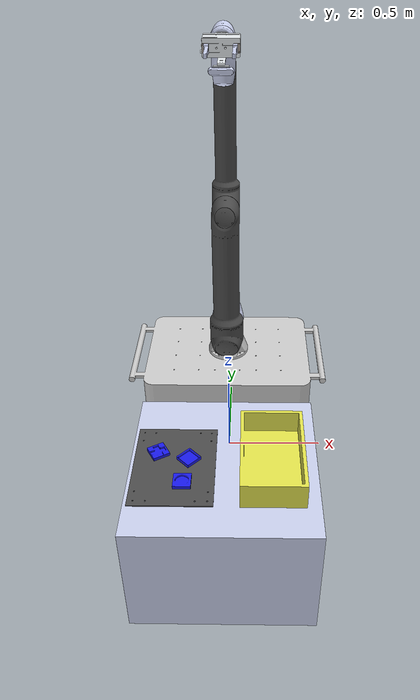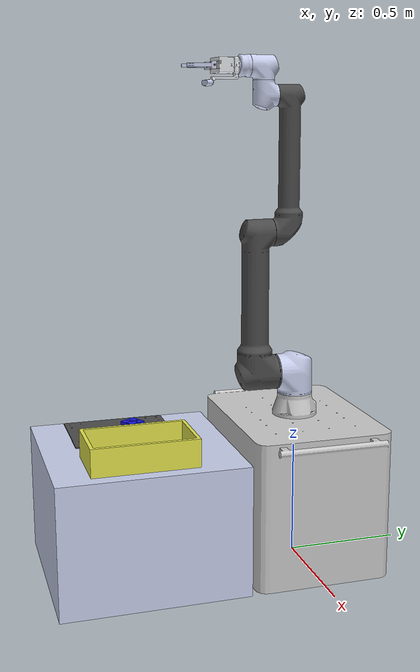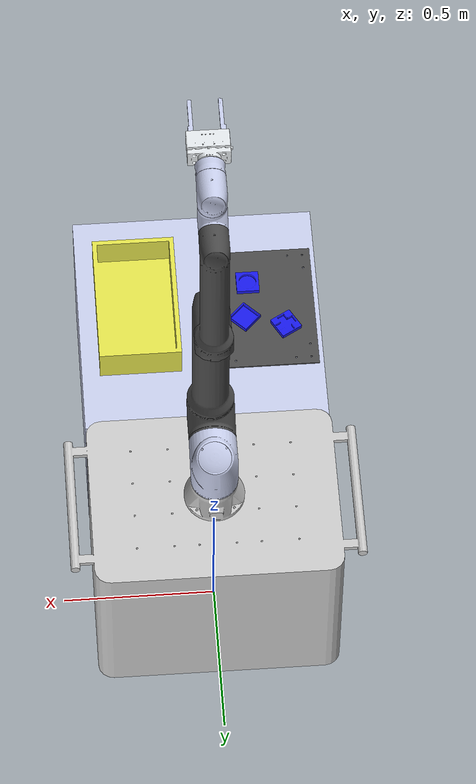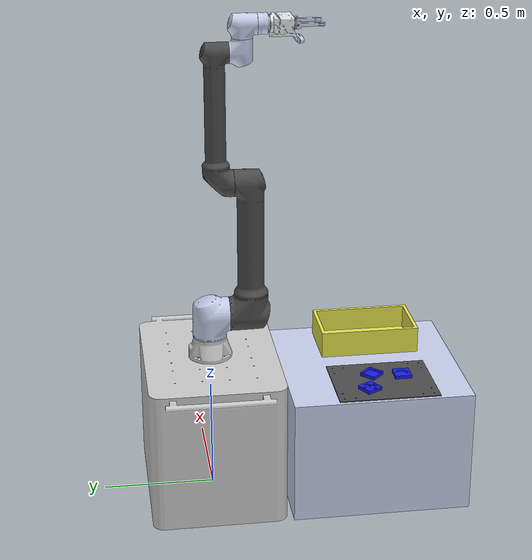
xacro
<?xml version="1.0"?>

<robot
    xmlns:xacro="http://www.ros.org/wiki/xacro"
    xmlns:controller="http://playerstage.sourceforge.net/gazebo/xmlschema/#controller"
    xmlns:interface="http://playerstage.sourceforge.net/gazebo/xmlschema/#interface"
    xmlns:sensor="http://playerstage.sourceforge.net/gazebo/xmlschema/#sensor"
    name="keti_robot_arm">

    <xacro:include filename="keti_robot.xacro"/>
    <xacro:include filename="keti_gripper.xacro"/>
    <xacro:include filename="keti_camera.xacro"/>
    <xacro:include filename="keti_environment.xacro"/>
    <xacro:include filename="keti_controller.xacro"/>

</robot>

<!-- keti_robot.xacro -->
<robot
    xmlns:xacro="http://www.ros.org/wiki/xacro">

    <xacro:property name="base_offset" value="0.6499999761581421"/>

    <link name="world"></link>

    <joint name="base_joint" type="fixed">
        <origin xyz="0 0 ${base_offset}" rpy="0 0 0"/>
        <parent link="world" />
        <child link="base_link" />
    </joint>

    <link name="base_link">
        <inertial>
            <origin
                xyz="-3.36084696400674E-05 0.00028713387556778 0.0438378186374772"
                rpy="0.0 0.0 0.0" />
            <mass value="2.25213983841171" />
            <inertia
                ixx="0.00610179267270193"
                ixy="5.05489700638155E-06"
                ixz="-2.06579420136556E-06"
                iyy="0.00603383828429949"
                iyz="-2.85750001496908E-06"
                izz="0.00860649294977137" />
        </inertial>
        <visual name="">
            <origin xyz="0.0 0.0 0.0" rpy="0.0 0.0 0.0" />
            <geometry>
                <mesh filename="package://keti_robot_description/meshes/base_link.STL" />
            </geometry>
            <material name="">
                <color rgba="0.8 0.8 0.8 1" />
            </material>
        </visual>
        <collision>
            <origin xyz="0.0 0.0 0.0" rpy="0.0 0.0 0.0" />
            <geometry>
                <mesh filename="package://keti_robot_description/meshes/base_link.STL" />
            </geometry>
        </collision>
    </link>

    <link name="link1">
        <inertial>
            <origin
                xyz="-0.000155596593394897 -0.0115300991030924 0.185903011387218"
                rpy="0.0 0.0 0.0">
            </origin>
            <mass value="3.38716123949166" />
            <inertia
                ixx="0.00965712344078406"
                ixy="2.56321142215039E-06"
                ixz="-2.07213259316219E-06"
                iyy="0.00999757711288239"
                iyz="0.00227412846191921"
                izz="0.00985394828837277" />
        </inertial>
        <visual name="">
            <origin xyz="0.0 0.0 0.0" rpy="0.0 0.0 0.0" />
            <geometry>
                <mesh filename="package://keti_robot_description/meshes/link1.STL" />
            </geometry>
            <material name="">
                <color rgba="0.792156862745098 0.819607843137255 0.933333333333333 1" />
            </material>
        </visual>
        <collision>
            <origin xyz="0.0 0.0 0.0" rpy="0.0 0.0 0.0" />
            <geometry>
                <mesh filename="package://keti_robot_description/meshes/link1.STL" />
            </geometry>
        </collision>
    </link>

    <link name="link2">
        <inertial>
            <origin
                xyz="-5.04047652291201E-05 -0.255908501214572 -0.182094524542086"
                rpy="0.0 0.0 0.0" />
            <mass value="10.3635885023069" />
            <inertia
                ixx="0.120627099316039"
                ixy="2.65066669408744E-06"
                ixz="2.16897828737298E-06"
                iyy="0.0227437773556374"
                iyz="-0.0016029791309899"
                izz="0.120841683724806" />
        </inertial>
        <visual name="">
            <origin xyz="0.0 0.0 0.0" rpy="0.0 0.0 0.0" />
            <geometry>
                <mesh filename="package://keti_robot_description/meshes/link2.STL" />
            </geometry>
            <material name="">
                <color rgba="0.294117647058824 0.294117647058824 0.294117647058824 1" />
            </material>
        </visual>
        <collision>
            <origin xyz="0.0 0.0 0.0" rpy="0.0 0.0 0.0" />
            <geometry>
                <mesh filename="package://keti_robot_description/meshes/link2.STL" />
            </geometry>
        </collision>
    </link>

    <link name="link3">
        <inertial>
            <origin
                xyz="0.266215180264014 1.29712622268241E-07 0.143135404945513"
                rpy="0.0 0.0 0.0" />
            <mass value="5.05083741641896" />
            <inertia
                ixx="0.00628902623789062"
                ixy="9.1337717733775E-09"
                ixz="-0.000370519945348952"
                iyy="0.061756757690725"
                iyz="-1.56347717729795E-09"
                izz="0.0618362170084191" />
        </inertial>
        <visual name="">
            <origin xyz="0.0 0.0 0.0" rpy="0.0 0.0 0.0" />
            <geometry>
                <mesh filename="package://keti_robot_description/meshes/link3.STL" />
            </geometry>
            <material name="">
                <color rgba="0.294117647058824 0.294117647058824 0.294117647058824 1" />
            </material>
        </visual>
        <collision>
            <origin xyz="0.0 0.0 0.0" rpy="0.0 0.0 0.0" />
            <geometry>
                <mesh filename="package://keti_robot_description/meshes/link3.STL" />
            </geometry>
        </collision>
    </link>

    <link name="link4">
        <inertial>
            <origin
                xyz="0.00564731690989118 -2.03600273793181E-07 -0.111294177443476"
                rpy="0.0 0.0 0.0" />
            <mass value="0.809634247265308" />
            <inertia
                ixx="0.000806283674225212"
                ixy="-1.71998154303632E-08"
                ixz="0.000215199499704635"
                iyy="0.000838076862135837"
                iyz="-7.62439682589746E-09"
                izz="0.00088136714943862" />
        </inertial>
        <visual name="">
            <origin xyz="0.0 0.0 0.0" rpy="0.0 0.0 0.0" />
            <geometry>
                <mesh filename="package://keti_robot_description/meshes/link4.STL" />
            </geometry>
            <material name="">
                <color rgba="0.792156862745098 0.819607843137255 0.933333333333333 1" />
                <texture filename="" />
            </material>
        </visual>
        <collision>
            <origin xyz="0.0 0.0 0.0" rpy="0.0 0.0 0.0" />
            <geometry>
                <mesh filename="package://keti_robot_description/meshes/link4.STL" />
            </geometry>
        </collision>
    </link>

    <link name="link5">
        <inertial>
            <origin
                xyz="3.79221289037446E-07 -0.0065154111458714 0.111384778201544"
                rpy="0.0 0.0 0.0" />
            <mass value="0.822358399005338" />
            <inertia
                ixx="0.00086697648332544"
                ixy="-4.3209208438896E-09"
                ixz="-3.43499554605311E-09"
                iyy="0.00082200885145279"
                iyz="0.000222523008866456"
                izz="0.000907682647219081" />
        </inertial>
        <visual name="">
            <origin xyz="0.0 0.0 0.0" rpy="0.0 0.0 0.0" />
            <geometry>
                <mesh filename="package://keti_robot_description/meshes/link5.STL" />
            </geometry>
            <material name="">
                <color rgba="0.792156862745098 0.819607843137255 0.933333333333333 1" />
                <texture filename="" />
            </material>
        </visual>
        <collision>
            <origin xyz="0.0 0.0 0.0" rpy="0.0 0.0 0.0" />
            <geometry>
                <mesh filename="package://keti_robot_description/meshes/link5.STL" />
            </geometry>
        </collision>
    </link>

    <link name="link6">
        <inertial>
            <origin
                xyz="-2.74288486201701E-07 -0.000235269428608742 -0.0906803365828259"
                rpy="0.0 0.0 0.0" />
            <mass value="0.237678022472349" />
            <inertia
                ixx="0.000145950216129124"
                ixy="-1.23036106344042E-09"
                ixz="-7.04161447052051E-10"
                iyy="0.000148314461323765"
                iyz="5.7765854614293E-07"
                izz="0.000234953691644831" />
        </inertial>
        <visual name="">
            <origin xyz="0.0 0.0 0.0" rpy="0.0 0.0 0.0" />
            <geometry>
                <mesh filename="package://keti_robot_description/meshes/link6.STL" />
            </geometry>
            <material name="">
                <color rgba="0.792156862745098 0.819607843137255 0.933333333333333 1" />
            </material>
        </visual>
        <collision>
            <origin xyz="0.0 0.0 0.0" rpy="0.0 0.0 0.0" />
            <geometry>
                <mesh filename="package://keti_robot_description/meshes/link6.STL" />
            </geometry>
        </collision>
    </link>

    <joint name="q1" type="revolute">
        <origin xyz="0.0 0.0 0.0" rpy="0.0 0.0 0.0" />
        <parent link="base_link" />
        <child link="link1" />
        <axis xyz="0.0 0.0 1.0" />
        <limit lower="-6.3" upper="6.3" effort="10" velocity="100" />
        <dynamics damping="50" friction="1"/>
    </joint>

    <joint name="q2" type="revolute">
        <origin xyz="0.0 0.0 0.198" rpy="-1.5708 0.0 0.0" />
        <parent link="link1" />
        <child link="link2" />
        <axis xyz="0.0 0.0 1.0" />
        <limit lower="-6.3" upper="6.3" effort="10" velocity="100" />
        <dynamics damping="50" friction="1"/>
    </joint>

    <joint name="q3" type="revolute">
        <origin xyz="0.0 -0.6127 -0.1875" rpy="0.0 0.0 -1.5708" />
        <parent link="link2" />
        <child link="link3" />
        <axis xyz="0.0 0.0 1.0" />
        <limit lower="-6.3" upper="6.3" effort="10" velocity="100" />
        <dynamics damping="50" friction="1"/>
    </joint>

    <joint name="q4" type="revolute">
        <origin xyz="0.57015 0 0.1484" rpy="0.0 0.0 0.0" />
        <parent link="link3" />
        <child link="link4" />
        <axis xyz="0.0 0.0 1.0" />
        <limit lower="-6.3" upper="6.3" effort="10" velocity="100" />
        <dynamics damping="50" friction="1"/>
    </joint>

    <joint name="q5" type="revolute">
        <origin xyz="0 0 -0.11715" rpy="1.5708 0 1.5708" />
        <parent link="link4" />
        <child link="link5" />
        <axis xyz="0.0 0.0 1.0" />
        <limit lower="-6.3" upper="6.3" effort="10" velocity="100" />
        <dynamics damping="50" friction="1"/>
    </joint>

    <joint name="q6" type="revolute">
        <origin xyz="0 0 0.11715" rpy="-1.5708 0 0" />
        <parent link="link5" />
        <child link="link6" />
        <axis xyz="0.0 0.0 1.0" />
        <limit lower="-6.3" upper="6.3" effort="10" velocity="100" />
        <dynamics damping="50" friction="1"/>
    </joint>

</robot>

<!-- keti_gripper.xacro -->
<robot
    xmlns:xacro="http://www.ros.org/wiki/xacro">

    <link name="gripper_body">
        <inertial>
            <origin
                xyz="-3.45920909952668E-05 -0.0477817173459312 -0.00571131983067263"
                rpy="0.0 0.0 0.0" />
            <mass value="0.933264814357233" />
            <inertia
                ixx="0.000450791407921585"
                ixy="4.50924518749628E-07"
                ixz="-7.44739815604934E-07"
                iyy="0.00142129108945366"
                iyz="-3.93915847422977E-06"
                izz="0.00128066984792434" />
        </inertial>
        <visual name="">
            <origin xyz="0.0 0.0 0.0" rpy="0.0 0.0 0.0" />
            <geometry>
                <mesh filename="package://keti_robot_description/meshes/gripper_body.STL" />
            </geometry>
            <material name="">
                <color rgba="0.898039215686275 0.917647058823529 0.929411764705882 1" />
            </material>
        </visual>
        <collision>
            <origin xyz="0.0 0.0 0.0" rpy="0.0 0.0 0.0" />
            <geometry>
                <mesh filename="package://keti_robot_description/meshes/gripper_body.STL" />
            </geometry>
        </collision>
    </link>

    <link name="gripper_tool1">
        <inertial>
            <origin
                xyz="-0.0503901981194649 -0.00839540838169439 -0.000187095087317068"
                rpy="0.0 0.0 0.0" />
            <mass value="0.0524980209707729" />
            <inertia
                ixx="4.96961994940061E-06"
                ixy="9.16328438600949E-07"
                ixz="-9.29191075202697E-08"
                iyy="5.26806301784339E-06"
                iyz="3.76648518766332E-08"
                izz="4.33143562379133E-06" />
        </inertial>
        <visual name="">
            <origin xyz="0.0 0.0 0.0" rpy="0.0 0.0 0.0" />
            <geometry>
                <mesh filename="package://keti_robot_description/meshes/gripper_tool1.STL" />
            </geometry>
            <material name="">
                <color rgba="0.650980392156863 0.619607843137255 0.588235294117647 1" />
            </material>
        </visual>
        <collision>
            <origin xyz="0.0 0.0 0.0" rpy="0.0 0.0 0.0" />
            <geometry>
                <mesh filename="package://keti_robot_description/meshes/gripper_tool1.STL" />
            </geometry>
        </collision>
    </link>

    <link name="gripper_finger1">
        <inertial>
            <origin
                xyz="-0.047830477436016 -0.0616732966021152 -4.02028360380058E-07"
                rpy="0.0 0.0 0.0" />
            <mass value="0.0233180451311379" />
            <inertia
                ixx="2.40087905135542E-05"
                ixy="3.97733646582783E-07"
                ixz="-1.76194958848478E-12"
                iyy="1.26145385442102E-06"
                iyz="-3.65200575464404E-11"
                izz="2.34253553003692E-05" />
        </inertial>
        <visual name="">
            <origin xyz="0.0 0.0 0.0" rpy="0.0 0.0 0.0" />
            <geometry>
                <mesh filename="package://keti_robot_description/meshes/gripper_finger1.STL" />
            </geometry>
            <material name="">
                <color rgba="0.792156862745098 0.819607843137255 0.933333333333333 1" />
            </material>
        </visual>
        <collision>
            <origin xyz="0.0 0.0 0.0" rpy="0.0 0.0 0.0" />
            <geometry>
                <mesh filename="package://keti_robot_description/meshes/gripper_finger1.STL" />
            </geometry>
        </collision>
    </link>

    <link name="gripper_tool2">
        <inertial>
            <origin
                xyz="0.050390198119466 -0.00839540838169439 0.000187095087317957"
                rpy="0.0 0.0 0.0" />
            <mass value="0.052498020970773" />
            <inertia
                ixx="4.96961994940061E-06"
                ixy="-9.1632843860095E-07"
                ixz="-9.29191075202696E-08"
                iyy="5.2680630178434E-06"
                iyz="-3.76648518766344E-08"
                izz="4.33143562379133E-06" />
        </inertial>
        <visual name="">
            <origin xyz="0.0 0.0 0.0" rpy="0.0 0.0 0.0" />
            <geometry>
                <mesh filename="package://keti_robot_description/meshes/gripper_tool2.STL" />
            </geometry>
            <material name="">
                <color rgba="0.650980392156863 0.619607843137255 0.588235294117647 1" />
            </material>
        </visual>
        <collision>
            <origin xyz="0.0 0.0 0.0" rpy="0.0 0.0 0.0" />
            <geometry>
                <mesh filename="package://keti_robot_description/meshes/gripper_tool2.STL" />
            </geometry>
        </collision>
    </link>

    <link name="gripper_finger2">
        <inertial>
            <origin
                xyz="0.0478304774360172 -0.0616732966021147 4.02028361046192E-07"
                rpy="0.0 0.0 0.0" />
            <mass value="0.0233180451311379" />
            <inertia
                ixx="2.40087905135545E-05"
                ixy="-3.97733646582811E-07"
                ixz="-1.7619495854565E-12"
                iyy="1.26145385442102E-06"
                iyz="3.6520057602396E-11"
                izz="2.34253553003694E-05" />
        </inertial>
        <visual name="">
            <origin xyz="0.0 0.0 0.0" rpy="0.0 0.0 0.0" />
            <geometry>
                <mesh filename="package://keti_robot_description/meshes/gripper_finger2.STL" />
            </geometry>
            <material name="">
                <color rgba="0.792156862745098 0.819607843137255 0.933333333333333 1" />
            </material>
        </visual>
        <collision>
            <origin xyz="0.0 0.0 0.0" rpy="0.0 0.0 0.0" />
            <geometry>
                <mesh filename="package://keti_robot_description/meshes/gripper_finger2.STL" />
            </geometry>
        </collision>
    </link>

    <link name="cam_body">
        <inertial>
            <origin
                xyz="0.0014399625101349 -5.94806382812063E-05 -0.0144824351521329"
                rpy="0 0 0" />
            <mass value="0.0224324424296924" />
            <inertia
                ixx="1.5561270767764E-06"
                ixy="-1.37007630764484E-09"
                ixz="1.48641223628634E-07"
                iyy="1.39866481202687E-05"
                iyz="-2.3852444733374E-09"
                izz="1.4977644157627E-05" />
        </inertial>
        <visual name="">
            <origin xyz="0 0 0" rpy="0 0 0" />
            <geometry>
                <mesh filename="package://keti_robot_description/meshes/cam.STL" />
            </geometry>
            <material name="">
                <color rgba="0.792156862745098 0.819607843137255 0.933333333333333 1" />
            </material>
        </visual>
        <collision>
            <origin xyz="0 0 0" rpy="0 0 0" />
            <geometry>
                <mesh filename="package://keti_robot_description/meshes/cam.STL" />
            </geometry>
        </collision>
    </link>

    <joint name="link6_gripper_fixed" type="fixed">
        <origin xyz="0.0 0.0 -0.1148" rpy="1.5708 0.0 0.0" />
        <parent link="link6" />
        <child link="gripper_body" />
    </joint>

    <joint name="s1" type="prismatic">
        <origin xyz="0.0 -0.0962 0.0" rpy="0.0 0.0 0.0" />
        <parent link="gripper_body" />
        <child link="gripper_tool1" />
        <axis xyz="1.0 0.0 0.0" />
        <limit lower="0.0" upper="0.04" effort="10" velocity="100" />
        <dynamics damping="50" friction="1"/>
    </joint>

    <joint name="tool_finger1_fixed" type="fixed">
        <origin xyz="0.0 0.0 0.0" rpy="0.0 0.0 0.0" />
        <parent link="gripper_tool1" />
        <child link="gripper_finger1" />
    </joint>

    <joint name="s2" type="prismatic">
        <origin xyz="0.0 -0.0962 0.0" rpy="0.0 0.0 0.0" />
        <parent link="gripper_body" />
        <child link="gripper_tool2" />
        <axis xyz="-1.0 0.0 0.0" />
        <limit lower="0.0" upper="0.04" effort="10" velocity="100" />
        <dynamics damping="50" friction="1"/>
    </joint>

    <joint name="tool_finger2_fixed" type="fixed">
        <origin xyz="0.0 0.0 0.0" rpy="0.0 0.0 0.0" />
        <parent link="gripper_tool2" />
        <child link="gripper_finger2" />
    </joint>

    <joint name="gripper_cam_fixed" type="fixed">
        <origin xyz="0 -0.13845 -0.0685" rpy="1.5708 0 0" />
        <parent link="gripper_body" />
        <child link="cam_body" />
    </joint>

</robot>

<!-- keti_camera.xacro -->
<robot
    xmlns:xacro="http://www.ros.org/wiki/xacro"
    xmlns:sensor="http://playerstage.sourceforge.net/gazebo/xmlschema/#sensor">

    <xacro:arg name="laser_visual" default="false"/>
    <xacro:arg name="imu_visual" default="false"/>
    <xacro:arg name="camera_visual" default="false"/>

    <link name="cam"></link>

    <joint name="cam_joint" type="fixed">
        <origin xyz="0 0 0" rpy="-1.5708 -1.5708 3.141592" />
        <parent link="cam_body" />
        <child link="cam" />
    </joint>

    <link name="cam_optical"></link>

    <joint name="cam_optical_joint" type="fixed">
        <origin xyz="0.0 0.0 0.0" rpy="-1.57 0.0 -1.57" />
        <parent link="cam" />
        <child link="cam_optical" />
    </joint>

    <gazebo reference="cam">
        <sensor type="camera" name="Realsense">
            <always_on>true</always_on>
            <visualize>true</visualize>
            <camera>
                <horizontal_fov>1.085595</horizontal_fov>
                <image>
                    <width>640</width>
                    <height>480</height>
                    <format>R8G8B8</format>
                </image>
                <clip>
                    <near>0.03</near>
                    <far>100</far>
                </clip>
            </camera>
            <plugin name="camera_controller" filename="libgazebo_ros_camera.so">
                <alwyasOn>true</alwyasOn>
                <updateRate>30.0</updateRate>
                <cameraName>camera</cameraName>
                <frameName>cam_optical</frameName>
                <imageTopicName>rgb/image_raw</imageTopicName>
                <cameraInfoTopicName>rgb/camera_info</cameraInfoTopicName>
                <hackBaselink>0.07</hackBaselink>
                <distortionK1>0.0</distortionK1>
                <distortionK2>0.0</distortionK2>
                <distortionK3>0.0</distortionK3>
                <distortionT1>0.0</distortionT1>
                <distortionT2>0.0</distortionT2>
            </plugin>
        </sensor>
    </gazebo>

</robot>

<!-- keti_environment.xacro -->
<robot
    xmlns:xacro="http://www.ros.org/wiki/xacro">

    <link name="base">
        <inertial>
            <origin
                xyz="-1.28688321068826E-06 0.000310942291804728 -0.323288844730514"
                rpy="0.0 0.0 0.0" />
            <mass value="838.015231637391" />
            <inertia
                ixx="54.3575108059622"
                ixy="-3.81584107573326E-15"
                ixz="6.11415690387546E-16"
                iyy="74.0754281872674"
                iyz="6.12342523382769E-17"
                izz="69.561169810993" />
        </inertial>
        <visual name="">
            <origin xyz="0.0 0.0 0.0" rpy="0.0 0.0 0.0" />
            <geometry>
                <mesh filename="package://keti_robot_description/meshes/base.STL" />
            </geometry>
            <material name="">
                <color rgba="0.8 0.8 0.8 1" />
            </material>
        </visual>
        <collision>
            <origin xyz="0.0 0.0 0.0" rpy="0.0 0.0 0.0" />
            <geometry>
                <mesh filename="package://keti_robot_description/meshes/base.STL" />
            </geometry>
        </collision>
    </link>

    <link name="place">
        <inertial>
            <origin
                xyz="-0.210001286883211 -0.749689057708196 -0.0805000000000003"
                rpy="0 0 0" />
            <mass value="0.785447283360145" />
            <inertia
                ixx="0.0132205587747909"
                ixy="1.32472975100367E-18"
                ixz="2.03192199097574E-21"
                iyy="0.0080030601215886"
                iyz="6.46234853556509E-24"
                izz="0.0212203461993655" />
        </inertial>
        <visual>
            <origin xyz="0 0 0" rpy="0 0 0" />
            <geometry>
                <mesh filename="package://keti_robot_description/meshes/place.STL" />
            </geometry>
            <material name="">
                <color rgba="0.3 0.3 0.3 1" />
            </material>
        </visual>
        <collision>
            <origin xyz="0 0 0" rpy="0 0 0" />
            <geometry>
                <mesh filename="package://keti_robot_description/meshes/place.STL" />
            </geometry>
        </collision>
    </link>

    <joint name="base_plate_fixed" type="fixed">
        <origin xyz="0 0 0" rpy="0 0 0" />
        <parent link="base_link" />
        <child link="place" />
    </joint>

    <link name="place_cross">
        <inertial>
            <origin
                xyz="0 -2.22044604925031E-16 0.00632920795289479"
                rpy="0 0 0" />
            <mass value="0.0578280000000003" />
            <inertia
                ixx="3.42810502491726E-05"
                ixy="1.78360819581747E-21"
                ixz="3.18948076485842E-20"
                iyy="3.42810502491724E-05"
                iyz="9.25119797073764E-22"
                izz="6.63513947000005E-05" />
        </inertial>
        <visual>
            <origin xyz="0 0 0" rpy="0 0 0.52" />
            <geometry>
                <mesh filename="package://keti_robot_description/meshes/place_cross.STL" />
            </geometry>
            <material name="">
                <color rgba="0.1 0.1 0.933333333333333 1" />
            </material>
        </visual>
        <collision>
            <origin xyz="0 0 0" rpy="0 0 0" />
            <geometry>
                <mesh filename="package://keti_robot_description/meshes/place_cross.STL" />
            </geometry>
        </collision>
    </link>

    <joint name="place_cross_fixed" type="fixed">
        <origin xyz="-0.28511 -0.67677 -0.078" rpy="0 0 0" />
        <parent link="place" />
        <child link="place_cross" />
    </joint>

    <link name="place_circle">
        <inertial>
            <origin
                xyz="-1.38777878078145E-17 0 0.00633087207893085"
                rpy="0 0 0" />
            <mass value="0.0577456825709279" />
            <inertia
                ixx="3.50125843490266E-05"
                ixy="-1.75505226671088E-21"
                ixz="3.33474887313518E-20"
                iyy="3.50125843490264E-05"
                iyz="4.75888101417994E-22"
                izz="6.78100728333874E-05" />
        </inertial>
        <visual>
            <origin xyz="0 0 0" rpy="0 0 0" />
            <geometry>
                <mesh filename="package://keti_robot_description/meshes/place_circle.STL" />
            </geometry>
            <material name="">
                <color rgba="0.1 0.1 0.933333333333333 1" />
            </material>
        </visual>
        <collision>
            <origin xyz="0 0 0" rpy="0 0 0" />
            <geometry>
                <mesh filename="package://keti_robot_description/meshes/place_circle.STL" />
            </geometry>
        </collision>
    </link>

    <joint name="place_circle_rixed" type="fixed">
        <origin xyz="-0.16925 -0.84711 -0.078" rpy="0 0 0" />
        <parent link="place" />
        <child link="place_circle" />
    </joint>

    <link name="place_rectangle">
        <inertial>
            <origin
                xyz="6.93889390390723E-18 0 0.00492506066510467"
                rpy="0 0 0" />
            <mass value="0.0418280000000002" />
            <inertia
                ixx="2.51335188313047E-05"
                ixy="-4.78949338497427E-21"
                ixz="-3.67398477789802E-22"
                iyy="2.51335188313045E-05"
                iyz="-7.51373122444433E-22"
                izz="4.89191280333338E-05" />
        </inertial>
        <visual>
            <origin xyz="0 0 0" rpy="0 0 0.79" />
            <geometry>
                <mesh filename="package://keti_robot_description/meshes/place_rectangle.STL" />
            </geometry>
            <material name="">
                <color rgba="0.1 0.1 0.933333333333333 1" />
            </material>
        </visual>
        <collision>
            <origin xyz="0 0 0" rpy="0 0 0" />
            <geometry>
                <mesh filename="package://keti_robot_description/meshes/place_rectangle.STL" />
            </geometry>
        </collision>
    </link>

    <joint name="place_rectangle_fixed" type="fixed">
        <origin xyz="-0.15072 -0.71284 -0.078" rpy="0 0 0" />
        <parent link="place" />
        <child link="place_rectangle" />
        <axis xyz="0 0 0" />
    </joint>

    <link name="pick">
        <inertial>
            <origin
                xyz="0.204998713116789 -0.749689057708195 -0.0428648648648652"
                rpy="0 0 0" />
            <mass value="4.07592" />
            <inertia
                ixx="0.0979734755675673"
                ixy="-7.99274219726029E-18"
                ixz="-1.12613192894528E-18"
                iyy="0.0442374275675675"
                iyz="-1.73250152083534E-17"
                izz="0.13078746" />
        </inertial>
        <visual>
            <origin xyz="0 0 0" rpy="0 0 0" />
            <geometry>
                <mesh filename="package://keti_robot_description/meshes/pick.STL" />
            </geometry>
            <material name="">
                <color rgba="0.9 0.9 0.3 1" />
            </material>
        </visual>
        <collision>
            <origin xyz="0 0 0" rpy="0 0 0" />
            <geometry>
                <mesh filename="package://keti_robot_description/meshes/pick.STL" />
            </geometry>
        </collision>
    </link>

    <joint name="base_pick_fixed" type="fixed">
        <origin xyz="0 0 0" rpy="0 0 0" />
        <parent link="base_link" />
        <child link="pick" />
    </joint>

    <link name="table">
        <inertial>
            <origin
                xyz="-1.28688321091031E-06 -0.724689057708195 -0.3655"
                rpy="0 0 0" />
            <mass value="361.6" />
            <inertia
                ixx="28.9046466666667"
                ixy="-2.16393591768236E-15"
                ixz="-1.46486195417846E-15"
                iyy="28.9046466666667"
                iyz="-1.48173644243146E-15"
                izz="38.5706666666667" />
        </inertial>
        <visual>
            <origin xyz="0 0 0" rpy="0 0 0" />
            <geometry>
                <mesh filename="package://keti_robot_description/meshes/table.STL" />
            </geometry>
            <material name="">
                <color rgba="0.792156862745098 0.819607843137255 0.933333333333333 1" />
            </material>
        </visual>
        <collision>
            <origin xyz="0 0 0" rpy="0 0 0" />
            <geometry>
                <mesh filename="package://keti_robot_description/meshes/table.STL" />
            </geometry>
        </collision>
    </link>

    <joint name="base_table_fixed" type="fixed">
        <origin xyz="0 0 0" rpy="0 0 0" />
        <parent link="base_link" />
        <child link="table" />
    </joint>

    <joint name="base_fixed" type="fixed">
        <origin xyz="0.0 0.0 0.0" rpy="0.0 0.0 0.0" />
        <parent link="base_link" />
        <child link="base" />
        <axis xyz="0.0 0.0 0.0" />
        <limit lower="0.0" upper="0.0" effort="0.0" velocity="0.0" />
    </joint>

</robot>
